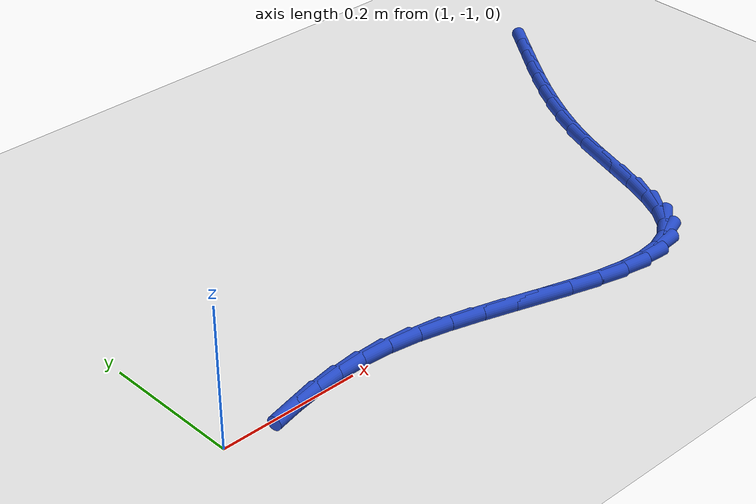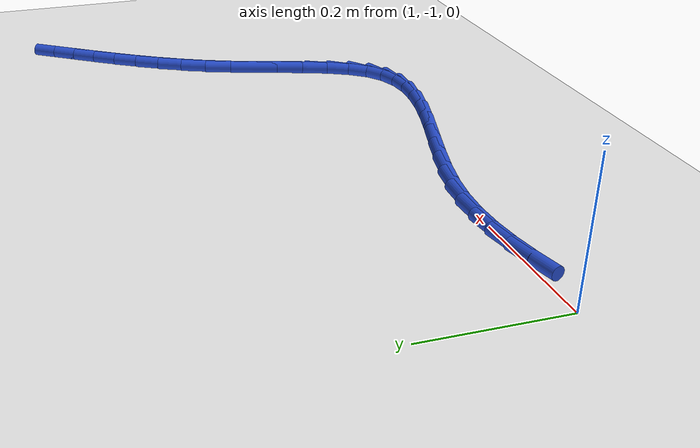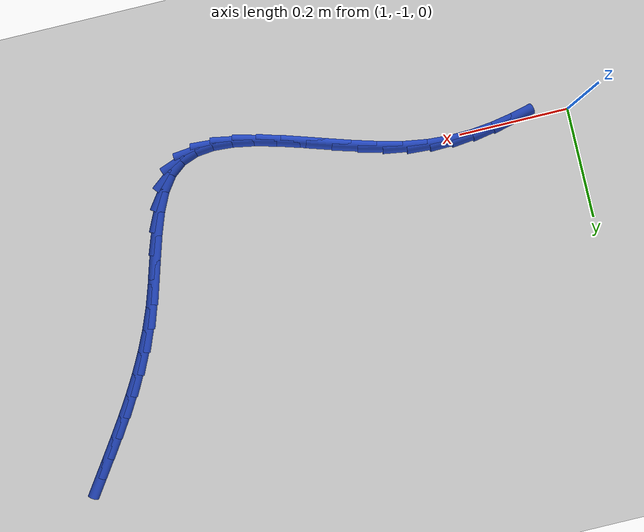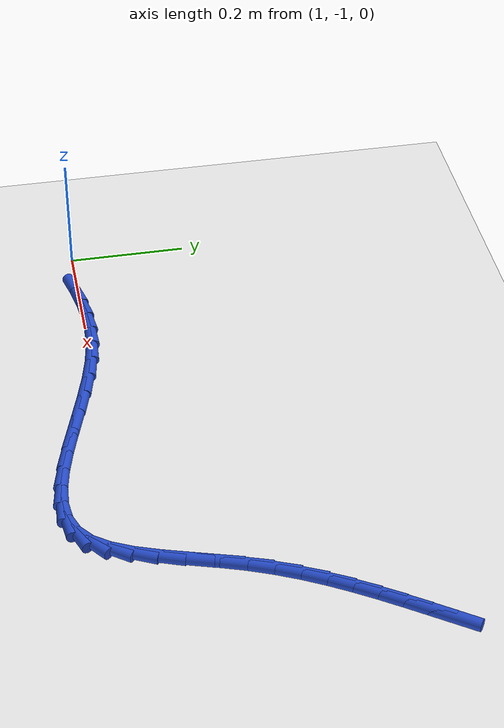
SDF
<sdf version="1.6">
 <world name="default">
  <model name="ground_plane">
   <static>1</static>
   <link name="link">
    <collision name="collision">
     <geometry><plane><normal>0 0 1</normal><size>100 100</size></plane></geometry>
     <surface><friction><ode><mu>100</mu><mu2>50</mu2></ode></friction></surface>
    </collision>
    <visual name="visual">
     <cast_shadows>0</cast_shadows>
     <geometry><plane><normal>0 0 1</normal><size>100 100</size></plane></geometry>
     <material>
      <script><uri>file://media/materials/scripts/gazebo.material</uri><name>Gazebo/WhiteGlow</name></script>
     </material>
    </visual>
   </link>
  </model>
  <model name="line">
   <link name="link_105">
    <pose>1.9708330541457135 -0.5530282232810814 0.01 0 1.57 0.9665413921176514</pose>
    <collision name="collision">
     <geometry><cylinder><radius>0.01</radius><length>0.08</length></cylinder></geometry>
    </collision>
    <visual name="visual">
     <material>
      <script><name>Gazebo/Blue</name><uri>file://media/materials/scripts/gazebo.material</uri></script>
     </material>
     <geometry><cylinder><radius>0.01</radius><length>0.08</length></cylinder></geometry>
    </visual>
   </link>
   <link name="link_106">
    <pose>1.9490033091206889 -0.5846471359015326 0.01 0 1.57 0.970097175964554</pose>
    <collision name="collision">
     <geometry><cylinder><radius>0.01</radius><length>0.08</length></cylinder></geometry>
    </collision>
    <visual name="visual">
     <material>
      <script><name>Gazebo/Blue</name><uri>file://media/materials/scripts/gazebo.material</uri></script>
     </material>
     <geometry><cylinder><radius>0.01</radius><length>0.08</length></cylinder></geometry>
    </visual>
   </link>
   <link name="link_107">
    <pose>1.927156759560027 -0.6165322899074029 0.01 0 1.57 0.9837406284258605</pose>
    <collision name="collision">
     <geometry><cylinder><radius>0.01</radius><length>0.08</length></cylinder></geometry>
    </collision>
    <visual name="visual">
     <material>
      <script><name>Gazebo/Blue</name><uri>file://media/materials/scripts/gazebo.material</uri></script>
     </material>
     <geometry><cylinder><radius>0.01</radius><length>0.08</length></cylinder></geometry>
    </visual>
   </link>
   <link name="link_108">
    <pose>1.9055827851327831 -0.6489597386549653 0.01 0 1.57 1.007164602324761</pose>
    <collision name="collision">
     <geometry><cylinder><radius>0.01</radius><length>0.08</length></cylinder></geometry>
    </collision>
    <visual name="visual">
     <material>
      <script><name>Gazebo/Blue</name><uri>file://media/materials/scripts/gazebo.material</uri></script>
     </material>
     <geometry><cylinder><radius>0.01</radius><length>0.08</length></cylinder></geometry>
    </visual>
   </link>
   <link name="link_109">
    <pose>1.8845707655080122 -0.6822055355004933 0.01 0 1.57 1.0399257654882337</pose>
    <collision name="collision">
     <geometry><cylinder><radius>0.01</radius><length>0.08</length></cylinder></geometry>
    </collision>
    <visual name="visual">
     <material>
      <script><name>Gazebo/Blue</name><uri>file://media/materials/scripts/gazebo.material</uri></script>
     </material>
     <geometry><cylinder><radius>0.01</radius><length>0.08</length></cylinder></geometry>
    </visual>
   </link>
   <link name="link_110">
    <pose>1.8644100803547705 -0.7165457338002583 0.01 0 1.57 1.0813996994099946</pose>
    <collision name="collision">
     <geometry><cylinder><radius>0.01</radius><length>0.08</length></cylinder></geometry>
    </collision>
    <visual name="visual">
     <material>
      <script><name>Gazebo/Blue</name><uri>file://media/materials/scripts/gazebo.material</uri></script>
     </material>
     <geometry><cylinder><radius>0.01</radius><length>0.08</length></cylinder></geometry>
    </visual>
   </link>
   <link name="link_111">
    <pose>1.8453901093421123 -0.7522563869105336 0.01 0 1.57 1.1307338106658964</pose>
    <collision name="collision">
     <geometry><cylinder><radius>0.01</radius><length>0.08</length></cylinder></geometry>
    </collision>
    <visual name="visual">
     <material>
      <script><name>Gazebo/Blue</name><uri>file://media/materials/scripts/gazebo.material</uri></script>
     </material>
     <geometry><cylinder><radius>0.01</radius><length>0.08</length></cylinder></geometry>
    </visual>
   </link>
   <link name="link_112">
    <pose>1.8278002321390936 -0.7896135481875921 0.01 0 1.57 1.1868158905839177</pose>
    <collision name="collision">
     <geometry><cylinder><radius>0.01</radius><length>0.08</length></cylinder></geometry>
    </collision>
    <visual name="visual">
     <material>
      <script><name>Gazebo/Blue</name><uri>file://media/materials/scripts/gazebo.material</uri></script>
     </material>
     <geometry><cylinder><radius>0.01</radius><length>0.08</length></cylinder></geometry>
    </visual>
   </link>
   <link name="link_113">
    <pose>1.8119298284147707 -0.8288932709877069 0.01 0 1.57 1.2442415565186322</pose>
    <collision name="collision">
     <geometry><cylinder><radius>0.01</radius><length>0.08</length></cylinder></geometry>
    </collision>
    <visual name="visual">
     <material>
      <script><name>Gazebo/Blue</name><uri>file://media/materials/scripts/gazebo.material</uri></script>
     </material>
     <geometry><cylinder><radius>0.01</radius><length>0.08</length></cylinder></geometry>
    </visual>
   </link>
   <link name="link_114">
    <pose>1.797943927122148 -0.8701886034052694 0.01 0 1.57 1.274612273335771</pose>
    <collision name="collision">
     <geometry><cylinder><radius>0.01</radius><length>0.08</length></cylinder></geometry>
    </collision>
    <visual name="visual">
     <material>
      <script><name>Gazebo/Blue</name><uri>file://media/materials/scripts/gazebo.material</uri></script>
     </material>
     <geometry><cylinder><radius>0.01</radius><length>0.08</length></cylinder></geometry>
    </visual>
   </link>
   <link name="link_115">
    <pose>1.7851043795462163 -0.9122633992130764 0.01 0 1.57 1.2677399467079862</pose>
    <collision name="collision">
     <geometry><cylinder><radius>0.01</radius><length>0.08</length></cylinder></geometry>
    </collision>
    <visual name="visual">
     <material>
      <script><name>Gazebo/Blue</name><uri>file://media/materials/scripts/gazebo.material</uri></script>
     </material>
     <geometry><cylinder><radius>0.01</radius><length>0.08</length></cylinder></geometry>
    </visual>
   </link>
   <link name="link_116">
    <pose>1.7722743507984273 -0.9532947711508623 0.01 0 1.57 1.2201327501693393</pose>
    <collision name="collision">
     <geometry><cylinder><radius>0.01</radius><length>0.08</length></cylinder></geometry>
    </collision>
    <visual name="visual">
     <material>
      <script><name>Gazebo/Blue</name><uri>file://media/materials/scripts/gazebo.material</uri></script>
     </material>
     <geometry><cylinder><radius>0.01</radius><length>0.08</length></cylinder></geometry>
    </visual>
   </link>
   <link name="link_117">
    <pose>1.7583152529011092 -0.9914572519608826 0.01 0 1.57 1.1193483984314712</pose>
    <collision name="collision">
     <geometry><cylinder><radius>0.01</radius><length>0.08</length></cylinder></geometry>
    </collision>
    <visual name="visual">
     <material>
      <script><name>Gazebo/Blue</name><uri>file://media/materials/scripts/gazebo.material</uri></script>
     </material>
     <geometry><cylinder><radius>0.01</radius><length>0.08</length></cylinder></geometry>
    </visual>
   </link>
   <link name="link_118">
    <pose>1.7420884978765894 -1.024925374385392 0.01 0 1.57 0.9411695419922476</pose>
    <collision name="collision">
     <geometry><cylinder><radius>0.01</radius><length>0.08</length></cylinder></geometry>
    </collision>
    <visual name="visual">
     <material>
      <script><name>Gazebo/Blue</name><uri>file://media/materials/scripts/gazebo.material</uri></script>
     </material>
     <geometry><cylinder><radius>0.01</radius><length>0.08</length></cylinder></geometry>
    </visual>
   </link>
   <link name="link_119">
    <pose>1.7224554977471958 -1.0518736711666452 0.01 0 1.57 0.6609684825655867</pose>
    <collision name="collision">
     <geometry><cylinder><radius>0.01</radius><length>0.08</length></cylinder></geometry>
    </collision>
    <visual name="visual">
     <material>
      <script><name>Gazebo/Blue</name><uri>file://media/materials/scripts/gazebo.material</uri></script>
     </material>
     <geometry><cylinder><radius>0.01</radius><length>0.08</length></cylinder></geometry>
    </visual>
   </link>
   <link name="link_120">
    <pose>1.698356499148147 -1.0706144482397604 0.01 0 1.57 0.3527322242713859</pose>
    <collision name="collision">
     <geometry><cylinder><radius>0.01</radius><length>0.08</length></cylinder></geometry>
    </collision>
    <visual name="visual">
     <material>
      <script><name>Gazebo/Blue</name><uri>file://media/materials/scripts/gazebo.material</uri></script>
     </material>
     <geometry><cylinder><radius>0.01</radius><length>0.08</length></cylinder></geometry>
    </visual>
   </link>
   <link name="link_121">
    <pose>1.669705461184057 -1.0811616939724495 0.01 0 1.57 0.10730142113133942</pose>
    <collision name="collision">
     <geometry><cylinder><radius>0.01</radius><length>0.08</length></cylinder></geometry>
    </collision>
    <visual name="visual">
     <material>
      <script><name>Gazebo/Blue</name><uri>file://media/materials/scripts/gazebo.material</uri></script>
     </material>
     <geometry><cylinder><radius>0.01</radius><length>0.08</length></cylinder></geometry>
    </visual>
   </link>
   <link name="link_122">
    <pose>1.6370728480966985 -1.0846767202944985 0.01 0 1.57 -0.06469768891271466</pose>
    <collision name="collision">
     <geometry><cylinder><radius>0.01</radius><length>0.08</length></cylinder></geometry>
    </collision>
    <visual name="visual">
     <material>
      <script><name>Gazebo/Blue</name><uri>file://media/materials/scripts/gazebo.material</uri></script>
     </material>
     <geometry><cylinder><radius>0.01</radius><length>0.08</length></cylinder></geometry>
    </visual>
   </link>
   <link name="link_123">
    <pose>1.6010414107644264 -1.082342311545956 0.01 0 1.57 -0.17830505592603454</pose>
    <collision name="collision">
     <geometry><cylinder><radius>0.01</radius><length>0.08</length></cylinder></geometry>
    </collision>
    <visual name="visual">
     <material>
      <script><name>Gazebo/Blue</name><uri>file://media/materials/scripts/gazebo.material</uri></script>
     </material>
     <geometry><cylinder><radius>0.01</radius><length>0.08</length></cylinder></geometry>
    </visual>
   </link>
   <link name="link_124">
    <pose>1.5621939000655933 -1.0753412520668713 0.01 0 1.57 -0.249891837065059</pose>
    <collision name="collision">
     <geometry><cylinder><radius>0.01</radius><length>0.08</length></cylinder></geometry>
    </collision>
    <visual name="visual">
     <material>
      <script><name>Gazebo/Blue</name><uri>file://media/materials/scripts/gazebo.material</uri></script>
     </material>
     <geometry><cylinder><radius>0.01</radius><length>0.08</length></cylinder></geometry>
    </visual>
   </link>
   <link name="link_125">
    <pose>1.521113066878553 -1.0648563261972939 0.01 0 1.57 -0.2907392613608744</pose>
    <collision name="collision">
     <geometry><cylinder><radius>0.01</radius><length>0.08</length></cylinder></geometry>
    </collision>
    <visual name="visual">
     <material>
      <script><name>Gazebo/Blue</name><uri>file://media/materials/scripts/gazebo.material</uri></script>
     </material>
     <geometry><cylinder><radius>0.01</radius><length>0.08</length></cylinder></geometry>
    </visual>
   </link>
   <link name="link_126">
    <pose>1.478381662081658 -1.0520703182772722 0.01 0 1.57 -0.3073931089663643</pose>
    <collision name="collision">
     <geometry><cylinder><radius>0.01</radius><length>0.08</length></cylinder></geometry>
    </collision>
    <visual name="visual">
     <material>
      <script><name>Gazebo/Blue</name><uri>file://media/materials/scripts/gazebo.material</uri></script>
     </material>
     <geometry><cylinder><radius>0.01</radius><length>0.08</length></cylinder></geometry>
    </visual>
   </link>
   <link name="link_127">
    <pose>1.4345824365532642 -1.0381660126468566 0.01 0 1.57 -0.30290496114031884</pose>
    <collision name="collision">
     <geometry><cylinder><radius>0.01</radius><length>0.08</length></cylinder></geometry>
    </collision>
    <visual name="visual">
     <material>
      <script><name>Gazebo/Blue</name><uri>file://media/materials/scripts/gazebo.material</uri></script>
     </material>
     <geometry><cylinder><radius>0.01</radius><length>0.08</length></cylinder></geometry>
    </visual>
   </link>
   <link name="link_128">
    <pose>1.3902981411717228 -1.0243261936460955 0.01 0 1.57 -0.2776258226569404</pose>
    <collision name="collision">
     <geometry><cylinder><radius>0.01</radius><length>0.08</length></cylinder></geometry>
    </collision>
    <visual name="visual">
     <material>
      <script><name>Gazebo/Blue</name><uri>file://media/materials/scripts/gazebo.material</uri></script>
     </material>
     <geometry><cylinder><radius>0.01</radius><length>0.08</length></cylinder></geometry>
    </visual>
   </link>
   <link name="link_129">
    <pose>1.3461115268153878 -1.0117336456150374 0.01 0 1.57 -0.2294727956922466</pose>
    <collision name="collision">
     <geometry><cylinder><radius>0.01</radius><length>0.08</length></cylinder></geometry>
    </collision>
    <visual name="visual">
     <material>
      <script><name>Gazebo/Blue</name><uri>file://media/materials/scripts/gazebo.material</uri></script>
     </material>
     <geometry><cylinder><radius>0.01</radius><length>0.08</length></cylinder></geometry>
    </visual>
   </link>
   <link name="link_130">
    <pose>1.3026053443626129 -1.0015711528937326 0.01 0 1.57 -0.1540904718112138</pose>
    <collision name="collision">
     <geometry><cylinder><radius>0.01</radius><length>0.08</length></cylinder></geometry>
    </collision>
    <visual name="visual">
     <material>
      <script><name>Gazebo/Blue</name><uri>file://media/materials/scripts/gazebo.material</uri></script>
     </material>
     <geometry><cylinder><radius>0.01</radius><length>0.08</length></cylinder></geometry>
    </visual>
   </link>
   <link name="link_131">
    <pose>1.2603556434925336 -0.9950088560368013 0.01 0 1.57 -0.05997290699406171</pose>
    <collision name="collision">
     <geometry><cylinder><radius>0.01</radius><length>0.08</length></cylinder></geometry>
    </collision>
    <visual name="visual">
     <material>
      <script><name>Gazebo/Blue</name><uri>file://media/materials/scripts/gazebo.material</uri></script>
     </material>
     <geometry><cylinder><radius>0.01</radius><length>0.08</length></cylinder></geometry>
    </visual>
   </link>
   <link name="link_132">
    <pose>1.219590924869286 -0.9925611420495134 0.01 0 1.57 0.03082766969332501</pose>
    <collision name="collision">
     <geometry><cylinder><radius>0.01</radius><length>0.08</length></cylinder></geometry>
    </collision>
    <visual name="visual">
     <material>
      <script><name>Gazebo/Blue</name><uri>file://media/materials/scripts/gazebo.material</uri></script>
     </material>
     <geometry><cylinder><radius>0.01</radius><length>0.08</length></cylinder></geometry>
    </visual>
   </link>
   <link name="link_133">
    <pose>1.1800301983642822 -0.9937810935418804 0.01 0 1.57 0.11235624275635026</pose>
    <collision name="collision">
     <geometry><cylinder><radius>0.01</radius><length>0.08</length></cylinder></geometry>
    </collision>
    <visual name="visual">
     <material>
      <script><name>Gazebo/Blue</name><uri>file://media/materials/scripts/gazebo.material</uri></script>
     </material>
     <geometry><cylinder><radius>0.01</radius><length>0.08</length></cylinder></geometry>
    </visual>
   </link>
   <link name="link_134">
    <pose>1.1413518914115268 -0.9981452224066233 0.01 0 1.57 0.1812339105719394</pose>
    <collision name="collision">
     <geometry><cylinder><radius>0.01</radius><length>0.08</length></cylinder></geometry>
    </collision>
    <visual name="visual">
     <material>
      <script><name>Gazebo/Blue</name><uri>file://media/materials/scripts/gazebo.material</uri></script>
     </material>
     <geometry><cylinder><radius>0.01</radius><length>0.08</length></cylinder></geometry>
    </visual>
   </link>
   <link name="link_135">
    <pose>1.1032344314450226 -1.0051300405364625 0.01 0 1.57 0.23532666548678446</pose>
    <collision name="collision">
     <geometry><cylinder><radius>0.01</radius><length>0.08</length></cylinder></geometry>
    </collision>
    <visual name="visual">
     <material>
      <script><name>Gazebo/Blue</name><uri>file://media/materials/scripts/gazebo.material</uri></script>
     </material>
     <geometry><cylinder><radius>0.01</radius><length>0.08</length></cylinder></geometry>
    </visual>
   </link>
  </model>
 </world>
</sdf>
